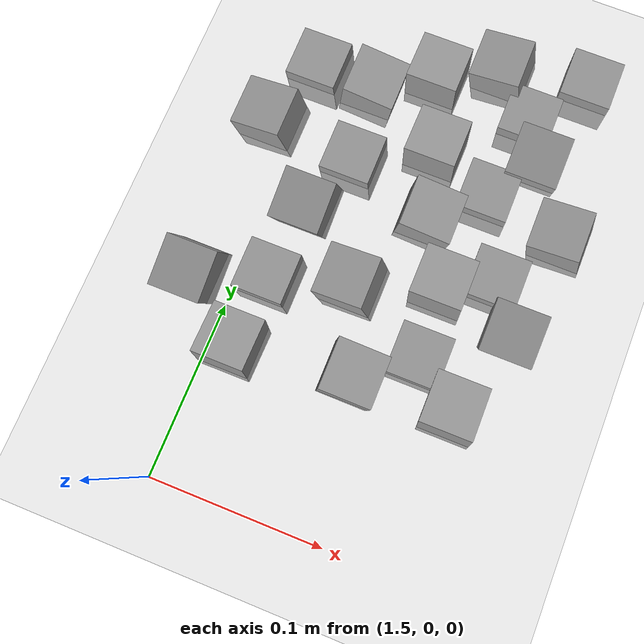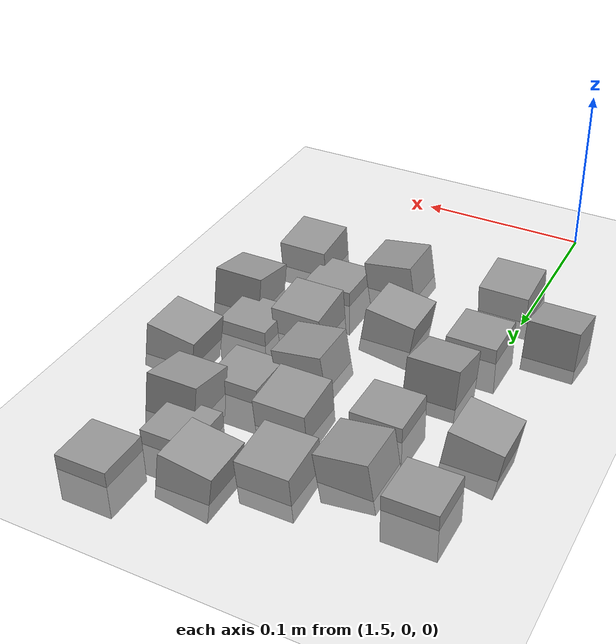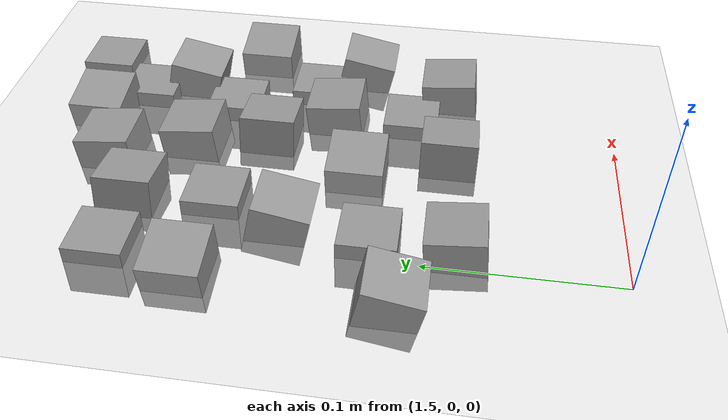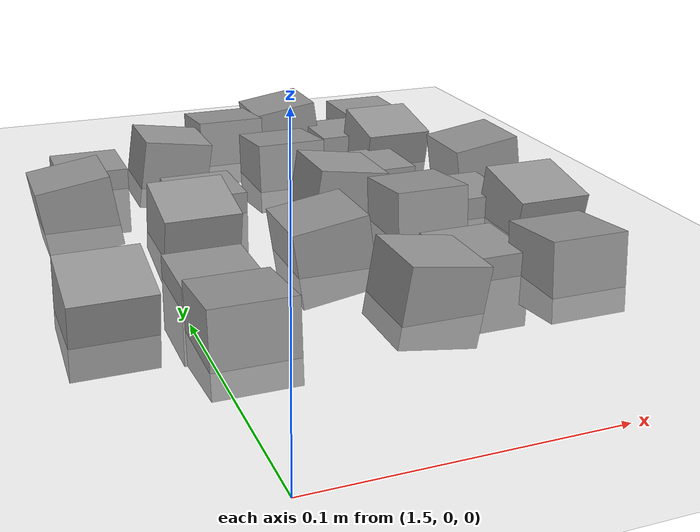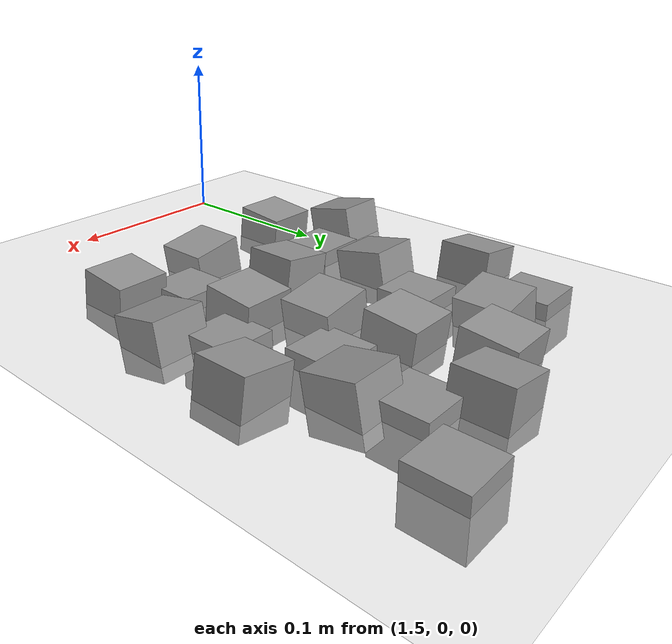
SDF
<sdf version="1.7">
 <world name="default">
  <model name="ground_plane">
   <static>1</static>
   <link name="link">
    <collision name="collision">
     <geometry><plane><normal>0 0 1</normal><size>100 100</size></plane></geometry>
     <surface><friction><ode><mu>100</mu><mu2>50</mu2></ode></friction></surface>
    </collision>
    <visual name="visual">
     <cast_shadows>0</cast_shadows>
     <geometry><plane><normal>0 0 1</normal><size>100 100</size></plane></geometry>
     <material>
      <script><uri>file://media/materials/scripts/gazebo.material</uri><name>Gazebo/Grey</name></script>
     </material>
    </visual>
   </link>
  </model>
  <model name="stone_road">
   <link name="link_0">
    <inertial>
     <mass>1</mass>
     <inertia>
      <ixx>0.166667</ixx>
      <ixy>0</ixy>
      <ixz>0</ixz>
      <iyy>0.166667</iyy>
      <iyz>0</iyz>
      <izz>0.166667</izz>
     </inertia>
    </inertial>
    <pose>-0.171827 0.03973 0.003778 0.2 -0 0</pose>
    <kinematic>1</kinematic>
    <visual name="visual">
     <geometry><box><size>0.03 0.03 0.03</size></box></geometry>
     <material>
      <lighting>1</lighting>
      <script><uri>file://media/materials/scripts/gazebo.material</uri><name>Gazebo/Grey</name></script>
      <shader type="pixel"><normal_map>__default__</normal_map></shader>
      <ambient>0.3 0.3 0.3 1</ambient>
      <diffuse>0.7 0.7 0.7 1</diffuse>
      <specular>0.01 0.01 0.01 1</specular>
      <emissive>0 0 0 1</emissive>
     </material>
    </visual>
    <collision name="collision">
     <geometry><box><size>0.03 0.03 0.03</size></box></geometry>
     <surface>
      <friction>
       <ode><mu>1</mu><mu2>1</mu2><fdir1>0 0 0</fdir1><slip1>0</slip1><slip2>0</slip2></ode>
       <torsional>
        <coefficient>1</coefficient>
        <patch_radius>0</patch_radius>
        <surface_radius>0</surface_radius>
        <use_patch_radius>1</use_patch_radius>
        <ode><slip>0</slip></ode>
       </torsional>
      </friction>
      <bounce><restitution_coefficient>0</restitution_coefficient><threshold>1e+06</threshold></bounce>
      <contact>
       <collide_without_contact>0</collide_without_contact>
       <collide_without_contact_bitmask>1</collide_without_contact_bitmask>
       <collide_bitmask>1</collide_bitmask>
       <ode>
        <soft_cfm>0</soft_cfm>
        <soft_erp>0.2</soft_erp>
        <kp>1e+13</kp>
        <kd>1</kd>
        <max_vel>0.01</max_vel>
        <min_depth>0</min_depth>
       </ode>
       <bullet>
        <split_impulse>1</split_impulse>
        <split_impulse_penetration_threshold>-0.01</split_impulse_penetration_threshold>
        <soft_cfm>0</soft_cfm>
        <soft_erp>0.2</soft_erp>
        <kp>1e+13</kp>
        <kd>1</kd>
       </bullet>
      </contact>
     </surface>
    </collision>
   </link>
   <link name="link_0_clone_10">
    <inertial>
     <mass>1</mass>
     <inertia>
      <ixx>0.166667</ixx>
      <ixy>0</ixy>
      <ixz>0</ixz>
      <iyy>0.166667</iyy>
      <iyz>0</iyz>
      <izz>0.166667</izz>
     </inertia>
    </inertial>
    <pose>-0.01295 0.17123 0.003778 0.2 -0 0</pose>
    <kinematic>1</kinematic>
    <visual name="visual">
     <geometry><box><size>0.03 0.03 0.03</size></box></geometry>
     <material>
      <lighting>1</lighting>
      <script><uri>file://media/materials/scripts/gazebo.material</uri><name>Gazebo/Grey</name></script>
      <shader type="pixel"><normal_map>__default__</normal_map></shader>
      <ambient>0.3 0.3 0.3 1</ambient>
      <diffuse>0.7 0.7 0.7 1</diffuse>
      <specular>0.01 0.01 0.01 1</specular>
      <emissive>0 0 0 1</emissive>
     </material>
    </visual>
    <collision name="collision">
     <geometry><box><size>0.03 0.03 0.03</size></box></geometry>
     <surface>
      <friction>
       <ode><mu>1</mu><mu2>1</mu2><fdir1>0 0 0</fdir1><slip1>0</slip1><slip2>0</slip2></ode>
       <torsional>
        <coefficient>1</coefficient>
        <patch_radius>0</patch_radius>
        <surface_radius>0</surface_radius>
        <use_patch_radius>1</use_patch_radius>
        <ode><slip>0</slip></ode>
       </torsional>
      </friction>
      <bounce><restitution_coefficient>0</restitution_coefficient><threshold>1e+06</threshold></bounce>
      <contact>
       <collide_without_contact>0</collide_without_contact>
       <collide_without_contact_bitmask>1</collide_without_contact_bitmask>
       <collide_bitmask>1</collide_bitmask>
       <ode>
        <soft_cfm>0</soft_cfm>
        <soft_erp>0.2</soft_erp>
        <kp>1e+13</kp>
        <kd>1</kd>
        <max_vel>0.01</max_vel>
        <min_depth>0</min_depth>
       </ode>
       <bullet>
        <split_impulse>1</split_impulse>
        <split_impulse_penetration_threshold>-0.01</split_impulse_penetration_threshold>
        <soft_cfm>0</soft_cfm>
        <soft_erp>0.2</soft_erp>
        <kp>1e+13</kp>
        <kd>1</kd>
       </bullet>
      </contact>
     </surface>
    </collision>
   </link>
   <link name="link_0_clone_11">
    <inertial>
     <mass>1</mass>
     <inertia>
      <ixx>0.166667</ixx>
      <ixy>0</ixy>
      <ixz>0</ixz>
      <iyy>0.166667</iyy>
      <iyz>0</iyz>
      <izz>0.166667</izz>
     </inertia>
    </inertial>
    <pose>0.007758 0.071496 0.003778 0.2 -0 0</pose>
    <kinematic>1</kinematic>
    <visual name="visual">
     <geometry><box><size>0.03 0.03 0.03</size></box></geometry>
     <material>
      <lighting>1</lighting>
      <script><uri>file://media/materials/scripts/gazebo.material</uri><name>Gazebo/Grey</name></script>
      <shader type="pixel"><normal_map>__default__</normal_map></shader>
      <ambient>0.3 0.3 0.3 1</ambient>
      <diffuse>0.7 0.7 0.7 1</diffuse>
      <specular>0.01 0.01 0.01 1</specular>
      <emissive>0 0 0 1</emissive>
     </material>
    </visual>
    <collision name="collision">
     <geometry><box><size>0.03 0.03 0.03</size></box></geometry>
     <surface>
      <friction>
       <ode><mu>1</mu><mu2>1</mu2><fdir1>0 0 0</fdir1><slip1>0</slip1><slip2>0</slip2></ode>
       <torsional>
        <coefficient>1</coefficient>
        <patch_radius>0</patch_radius>
        <surface_radius>0</surface_radius>
        <use_patch_radius>1</use_patch_radius>
        <ode><slip>0</slip></ode>
       </torsional>
      </friction>
      <bounce><restitution_coefficient>0</restitution_coefficient><threshold>1e+06</threshold></bounce>
      <contact>
       <collide_without_contact>0</collide_without_contact>
       <collide_without_contact_bitmask>1</collide_without_contact_bitmask>
       <collide_bitmask>1</collide_bitmask>
       <ode>
        <soft_cfm>0</soft_cfm>
        <soft_erp>0.2</soft_erp>
        <kp>1e+13</kp>
        <kd>1</kd>
        <max_vel>0.01</max_vel>
        <min_depth>0</min_depth>
       </ode>
       <bullet>
        <split_impulse>1</split_impulse>
        <split_impulse_penetration_threshold>-0.01</split_impulse_penetration_threshold>
        <soft_cfm>0</soft_cfm>
        <soft_erp>0.2</soft_erp>
        <kp>1e+13</kp>
        <kd>1</kd>
       </bullet>
      </contact>
     </surface>
    </collision>
   </link>
   <link name="link_0_clone_2">
    <inertial>
     <mass>1</mass>
     <inertia>
      <ixx>0.166667</ixx>
      <ixy>0</ixy>
      <ixz>0</ixz>
      <iyy>0.166667</iyy>
      <iyz>0</iyz>
      <izz>0.166667</izz>
     </inertia>
    </inertial>
    <pose>-0.065685 0.018139 0.003778 0 0.15 0</pose>
    <kinematic>1</kinematic>
    <visual name="visual">
     <geometry><box><size>0.03 0.03 0.03</size></box></geometry>
     <material>
      <lighting>1</lighting>
      <script><uri>file://media/materials/scripts/gazebo.material</uri><name>Gazebo/Grey</name></script>
      <shader type="pixel"><normal_map>__default__</normal_map></shader>
      <ambient>0.3 0.3 0.3 1</ambient>
      <diffuse>0.7 0.7 0.7 1</diffuse>
      <specular>0.01 0.01 0.01 1</specular>
      <emissive>0 0 0 1</emissive>
     </material>
    </visual>
    <collision name="collision">
     <geometry><box><size>0.03 0.03 0.03</size></box></geometry>
     <surface>
      <friction>
       <ode><mu>1</mu><mu2>1</mu2><fdir1>0 0 0</fdir1><slip1>0</slip1><slip2>0</slip2></ode>
       <torsional>
        <coefficient>1</coefficient>
        <patch_radius>0</patch_radius>
        <surface_radius>0</surface_radius>
        <use_patch_radius>1</use_patch_radius>
        <ode><slip>0</slip></ode>
       </torsional>
      </friction>
      <bounce><restitution_coefficient>0</restitution_coefficient><threshold>1e+06</threshold></bounce>
      <contact>
       <collide_without_contact>0</collide_without_contact>
       <collide_without_contact_bitmask>1</collide_without_contact_bitmask>
       <collide_bitmask>1</collide_bitmask>
       <ode>
        <soft_cfm>0</soft_cfm>
        <soft_erp>0.2</soft_erp>
        <kp>1e+13</kp>
        <kd>1</kd>
        <max_vel>0.01</max_vel>
        <min_depth>0</min_depth>
       </ode>
       <bullet>
        <split_impulse>1</split_impulse>
        <split_impulse_penetration_threshold>-0.01</split_impulse_penetration_threshold>
        <soft_cfm>0</soft_cfm>
        <soft_erp>0.2</soft_erp>
        <kp>1e+13</kp>
        <kd>1</kd>
       </bullet>
      </contact>
     </surface>
    </collision>
   </link>
   <link name="link_0_clone_2_clone_2_clone_1">
    <inertial>
     <mass>1</mass>
     <inertia>
      <ixx>0.166667</ixx>
      <ixy>0</ixy>
      <ixz>0</ixz>
      <iyy>0.166667</iyy>
      <iyz>0</iyz>
      <izz>0.166667</izz>
     </inertia>
    </inertial>
    <pose>-0.085624 0.065625 0.003778 0 -0.15 0</pose>
    <kinematic>1</kinematic>
    <visual name="visual">
     <geometry><box><size>0.03 0.03 0.03</size></box></geometry>
     <material>
      <lighting>1</lighting>
      <script><uri>file://media/materials/scripts/gazebo.material</uri><name>Gazebo/Grey</name></script>
      <shader type="pixel"><normal_map>__default__</normal_map></shader>
      <ambient>0.3 0.3 0.3 1</ambient>
      <diffuse>0.7 0.7 0.7 1</diffuse>
      <specular>0.01 0.01 0.01 1</specular>
      <emissive>0 0 0 1</emissive>
     </material>
    </visual>
    <collision name="collision">
     <geometry><box><size>0.03 0.03 0.03</size></box></geometry>
     <surface>
      <friction>
       <ode><mu>1</mu><mu2>1</mu2><fdir1>0 0 0</fdir1><slip1>0</slip1><slip2>0</slip2></ode>
       <torsional>
        <coefficient>1</coefficient>
        <patch_radius>0</patch_radius>
        <surface_radius>0</surface_radius>
        <use_patch_radius>1</use_patch_radius>
        <ode><slip>0</slip></ode>
       </torsional>
      </friction>
      <bounce><restitution_coefficient>0</restitution_coefficient><threshold>1e+06</threshold></bounce>
      <contact>
       <collide_without_contact>0</collide_without_contact>
       <collide_without_contact_bitmask>1</collide_without_contact_bitmask>
       <collide_bitmask>1</collide_bitmask>
       <ode>
        <soft_cfm>0</soft_cfm>
        <soft_erp>0.2</soft_erp>
        <kp>1e+13</kp>
        <kd>1</kd>
        <max_vel>0.01</max_vel>
        <min_depth>0</min_depth>
       </ode>
       <bullet>
        <split_impulse>1</split_impulse>
        <split_impulse_penetration_threshold>-0.01</split_impulse_penetration_threshold>
        <soft_cfm>0</soft_cfm>
        <soft_erp>0.2</soft_erp>
        <kp>1e+13</kp>
        <kd>1</kd>
       </bullet>
      </contact>
     </surface>
    </collision>
   </link>
   <link name="link_0_clone_2_clone_2_clone_11">
    <inertial>
     <mass>1</mass>
     <inertia>
      <ixx>0.166667</ixx>
      <ixy>0</ixy>
      <ixz>0</ixz>
      <iyy>0.166667</iyy>
      <iyz>0</iyz>
      <izz>0.166667</izz>
     </inertia>
    </inertial>
    <pose>-0.050382 0.216558 0.003778 0 -0.15 0</pose>
    <kinematic>1</kinematic>
    <visual name="visual">
     <geometry><box><size>0.03 0.03 0.03</size></box></geometry>
     <material>
      <lighting>1</lighting>
      <script><uri>file://media/materials/scripts/gazebo.material</uri><name>Gazebo/Grey</name></script>
      <shader type="pixel"><normal_map>__default__</normal_map></shader>
      <ambient>0.3 0.3 0.3 1</ambient>
      <diffuse>0.7 0.7 0.7 1</diffuse>
      <specular>0.01 0.01 0.01 1</specular>
      <emissive>0 0 0 1</emissive>
     </material>
    </visual>
    <collision name="collision">
     <geometry><box><size>0.03 0.03 0.03</size></box></geometry>
     <surface>
      <friction>
       <ode><mu>1</mu><mu2>1</mu2><fdir1>0 0 0</fdir1><slip1>0</slip1><slip2>0</slip2></ode>
       <torsional>
        <coefficient>1</coefficient>
        <patch_radius>0</patch_radius>
        <surface_radius>0</surface_radius>
        <use_patch_radius>1</use_patch_radius>
        <ode><slip>0</slip></ode>
       </torsional>
      </friction>
      <bounce><restitution_coefficient>0</restitution_coefficient><threshold>1e+06</threshold></bounce>
      <contact>
       <collide_without_contact>0</collide_without_contact>
       <collide_without_contact_bitmask>1</collide_without_contact_bitmask>
       <collide_bitmask>1</collide_bitmask>
       <ode>
        <soft_cfm>0</soft_cfm>
        <soft_erp>0.2</soft_erp>
        <kp>1e+13</kp>
        <kd>1</kd>
        <max_vel>0.01</max_vel>
        <min_depth>0</min_depth>
       </ode>
       <bullet>
        <split_impulse>1</split_impulse>
        <split_impulse_penetration_threshold>-0.01</split_impulse_penetration_threshold>
        <soft_cfm>0</soft_cfm>
        <soft_erp>0.2</soft_erp>
        <kp>1e+13</kp>
        <kd>1</kd>
       </bullet>
      </contact>
     </surface>
    </collision>
   </link>
   <link name="link_0_clone_2_clone_2_clone_13">
    <inertial>
     <mass>1</mass>
     <inertia>
      <ixx>0.166667</ixx>
      <ixy>0</ixy>
      <ixz>0</ixz>
      <iyy>0.166667</iyy>
      <iyz>0</iyz>
      <izz>0.166667</izz>
     </inertia>
    </inertial>
    <pose>0.014407 0.13189 0.003778 0 -0.15 0</pose>
    <kinematic>1</kinematic>
    <visual name="visual">
     <geometry><box><size>0.03 0.03 0.03</size></box></geometry>
     <material>
      <lighting>1</lighting>
      <script><uri>file://media/materials/scripts/gazebo.material</uri><name>Gazebo/Grey</name></script>
      <shader type="pixel"><normal_map>__default__</normal_map></shader>
      <ambient>0.3 0.3 0.3 1</ambient>
      <diffuse>0.7 0.7 0.7 1</diffuse>
      <specular>0.01 0.01 0.01 1</specular>
      <emissive>0 0 0 1</emissive>
     </material>
    </visual>
    <collision name="collision">
     <geometry><box><size>0.03 0.03 0.03</size></box></geometry>
     <surface>
      <friction>
       <ode><mu>1</mu><mu2>1</mu2><fdir1>0 0 0</fdir1><slip1>0</slip1><slip2>0</slip2></ode>
       <torsional>
        <coefficient>1</coefficient>
        <patch_radius>0</patch_radius>
        <surface_radius>0</surface_radius>
        <use_patch_radius>1</use_patch_radius>
        <ode><slip>0</slip></ode>
       </torsional>
      </friction>
      <bounce><restitution_coefficient>0</restitution_coefficient><threshold>1e+06</threshold></bounce>
      <contact>
       <collide_without_contact>0</collide_without_contact>
       <collide_without_contact_bitmask>1</collide_without_contact_bitmask>
       <collide_bitmask>1</collide_bitmask>
       <ode>
        <soft_cfm>0</soft_cfm>
        <soft_erp>0.2</soft_erp>
        <kp>1e+13</kp>
        <kd>1</kd>
        <max_vel>0.01</max_vel>
        <min_depth>0</min_depth>
       </ode>
       <bullet>
        <split_impulse>1</split_impulse>
        <split_impulse_penetration_threshold>-0.01</split_impulse_penetration_threshold>
        <soft_cfm>0</soft_cfm>
        <soft_erp>0.2</soft_erp>
        <kp>1e+13</kp>
        <kd>1</kd>
       </bullet>
      </contact>
     </surface>
    </collision>
   </link>
   <link name="link_0_clone_2_clone_2_clone_13_clone_clone_13">
    <inertial>
     <mass>1</mass>
     <inertia>
      <ixx>0.166667</ixx>
      <ixy>0</ixy>
      <ixz>0</ixz>
      <iyy>0.166667</iyy>
      <iyz>0</iyz>
      <izz>0.166667</izz>
     </inertia>
    </inertial>
    <pose>-0.069861 0.157394 0.003778 -0.1 0 0</pose>
    <kinematic>1</kinematic>
    <visual name="visual">
     <geometry><box><size>0.03 0.03 0.03</size></box></geometry>
     <material>
      <lighting>1</lighting>
      <script><uri>file://media/materials/scripts/gazebo.material</uri><name>Gazebo/Grey</name></script>
      <shader type="pixel"><normal_map>__default__</normal_map></shader>
      <ambient>0.3 0.3 0.3 1</ambient>
      <diffuse>0.7 0.7 0.7 1</diffuse>
      <specular>0.01 0.01 0.01 1</specular>
      <emissive>0 0 0 1</emissive>
     </material>
    </visual>
    <collision name="collision">
     <geometry><box><size>0.03 0.03 0.03</size></box></geometry>
     <surface>
      <friction>
       <ode><mu>1</mu><mu2>1</mu2><fdir1>0 0 0</fdir1><slip1>0</slip1><slip2>0</slip2></ode>
       <torsional>
        <coefficient>1</coefficient>
        <patch_radius>0</patch_radius>
        <surface_radius>0</surface_radius>
        <use_patch_radius>1</use_patch_radius>
        <ode><slip>0</slip></ode>
       </torsional>
      </friction>
      <bounce><restitution_coefficient>0</restitution_coefficient><threshold>1e+06</threshold></bounce>
      <contact>
       <collide_without_contact>0</collide_without_contact>
       <collide_without_contact_bitmask>1</collide_without_contact_bitmask>
       <collide_bitmask>1</collide_bitmask>
       <ode>
        <soft_cfm>0</soft_cfm>
        <soft_erp>0.2</soft_erp>
        <kp>1e+13</kp>
        <kd>1</kd>
        <max_vel>0.01</max_vel>
        <min_depth>0</min_depth>
       </ode>
       <bullet>
        <split_impulse>1</split_impulse>
        <split_impulse_penetration_threshold>-0.01</split_impulse_penetration_threshold>
        <soft_cfm>0</soft_cfm>
        <soft_erp>0.2</soft_erp>
        <kp>1e+13</kp>
        <kd>1</kd>
       </bullet>
      </contact>
     </surface>
    </collision>
   </link>
   <link name="link_0_clone_2_clone_2_clone_13_clone_clone_15">
    <inertial>
     <mass>1</mass>
     <inertia>
      <ixx>0.166667</ixx>
      <ixy>0</ixy>
      <ixz>0</ixz>
      <iyy>0.166667</iyy>
      <iyz>0</iyz>
      <izz>0.166667</izz>
     </inertia>
    </inertial>
    <pose>-0.084893 0.19984 0.003778 -0.1 0 0</pose>
    <kinematic>1</kinematic>
    <visual name="visual">
     <geometry><box><size>0.03 0.03 0.03</size></box></geometry>
     <material>
      <lighting>1</lighting>
      <script><uri>file://media/materials/scripts/gazebo.material</uri><name>Gazebo/Grey</name></script>
      <shader type="pixel"><normal_map>__default__</normal_map></shader>
      <ambient>0.3 0.3 0.3 1</ambient>
      <diffuse>0.7 0.7 0.7 1</diffuse>
      <specular>0.01 0.01 0.01 1</specular>
      <emissive>0 0 0 1</emissive>
     </material>
    </visual>
    <collision name="collision">
     <geometry><box><size>0.03 0.03 0.03</size></box></geometry>
     <surface>
      <friction>
       <ode><mu>1</mu><mu2>1</mu2><fdir1>0 0 0</fdir1><slip1>0</slip1><slip2>0</slip2></ode>
       <torsional>
        <coefficient>1</coefficient>
        <patch_radius>0</patch_radius>
        <surface_radius>0</surface_radius>
        <use_patch_radius>1</use_patch_radius>
        <ode><slip>0</slip></ode>
       </torsional>
      </friction>
      <bounce><restitution_coefficient>0</restitution_coefficient><threshold>1e+06</threshold></bounce>
      <contact>
       <collide_without_contact>0</collide_without_contact>
       <collide_without_contact_bitmask>1</collide_without_contact_bitmask>
       <collide_bitmask>1</collide_bitmask>
       <ode>
        <soft_cfm>0</soft_cfm>
        <soft_erp>0.2</soft_erp>
        <kp>1e+13</kp>
        <kd>1</kd>
        <max_vel>0.01</max_vel>
        <min_depth>0</min_depth>
       </ode>
       <bullet>
        <split_impulse>1</split_impulse>
        <split_impulse_penetration_threshold>-0.01</split_impulse_penetration_threshold>
        <soft_cfm>0</soft_cfm>
        <soft_erp>0.2</soft_erp>
        <kp>1e+13</kp>
        <kd>1</kd>
       </bullet>
      </contact>
     </surface>
    </collision>
   </link>
   <link name="link_0_clone_2_clone_2_clone_13_clone_clone_16_clone_0">
    <inertial>
     <mass>1</mass>
     <inertia>
      <ixx>0.166667</ixx>
      <ixy>0</ixy>
      <ixz>0</ixz>
      <iyy>0.166667</iyy>
      <iyz>0</iyz>
      <izz>0.166667</izz>
     </inertia>
    </inertial>
    <pose>-0.010782 0.09679 -0.006222 0 -0 0</pose>
    <kinematic>1</kinematic>
    <visual name="visual">
     <geometry><box><size>0.03 0.03 0.03</size></box></geometry>
     <material>
      <lighting>1</lighting>
      <script><uri>file://media/materials/scripts/gazebo.material</uri><name>Gazebo/Grey</name></script>
      <shader type="pixel"><normal_map>__default__</normal_map></shader>
      <ambient>0.3 0.3 0.3 1</ambient>
      <diffuse>0.7 0.7 0.7 1</diffuse>
      <specular>0.01 0.01 0.01 1</specular>
      <emissive>0 0 0 1</emissive>
     </material>
    </visual>
    <collision name="collision">
     <geometry><box><size>0.03 0.03 0.03</size></box></geometry>
     <surface>
      <friction>
       <ode><mu>1</mu><mu2>1</mu2><fdir1>0 0 0</fdir1><slip1>0</slip1><slip2>0</slip2></ode>
       <torsional>
        <coefficient>1</coefficient>
        <patch_radius>0</patch_radius>
        <surface_radius>0</surface_radius>
        <use_patch_radius>1</use_patch_radius>
        <ode><slip>0</slip></ode>
       </torsional>
      </friction>
      <bounce><restitution_coefficient>0</restitution_coefficient><threshold>1e+06</threshold></bounce>
      <contact>
       <collide_without_contact>0</collide_without_contact>
       <collide_without_contact_bitmask>1</collide_without_contact_bitmask>
       <collide_bitmask>1</collide_bitmask>
       <ode>
        <soft_cfm>0</soft_cfm>
        <soft_erp>0.2</soft_erp>
        <kp>1e+13</kp>
        <kd>1</kd>
        <max_vel>0.01</max_vel>
        <min_depth>0</min_depth>
       </ode>
       <bullet>
        <split_impulse>1</split_impulse>
        <split_impulse_penetration_threshold>-0.01</split_impulse_penetration_threshold>
        <soft_cfm>0</soft_cfm>
        <soft_erp>0.2</soft_erp>
        <kp>1e+13</kp>
        <kd>1</kd>
       </bullet>
      </contact>
     </surface>
    </collision>
   </link>
   <link name="link_0_clone_2_clone_2_clone_13_clone_clone_16_clone_2">
    <inertial>
     <mass>1</mass>
     <inertia>
      <ixx>0.166667</ixx>
      <ixy>0</ixy>
      <ixz>0</ixz>
      <iyy>0.166667</iyy>
      <iyz>0</iyz>
      <izz>0.166667</izz>
     </inertia>
    </inertial>
    <pose>-0.035128 0.040728 -0.006222 0 -0 0</pose>
    <kinematic>1</kinematic>
    <visual name="visual">
     <geometry><box><size>0.03 0.03 0.03</size></box></geometry>
     <material>
      <lighting>1</lighting>
      <script><uri>file://media/materials/scripts/gazebo.material</uri><name>Gazebo/Grey</name></script>
      <shader type="pixel"><normal_map>__default__</normal_map></shader>
      <ambient>0.3 0.3 0.3 1</ambient>
      <diffuse>0.7 0.7 0.7 1</diffuse>
      <specular>0.01 0.01 0.01 1</specular>
      <emissive>0 0 0 1</emissive>
     </material>
    </visual>
    <collision name="collision">
     <geometry><box><size>0.03 0.03 0.03</size></box></geometry>
     <surface>
      <friction>
       <ode><mu>1</mu><mu2>1</mu2><fdir1>0 0 0</fdir1><slip1>0</slip1><slip2>0</slip2></ode>
       <torsional>
        <coefficient>1</coefficient>
        <patch_radius>0</patch_radius>
        <surface_radius>0</surface_radius>
        <use_patch_radius>1</use_patch_radius>
        <ode><slip>0</slip></ode>
       </torsional>
      </friction>
      <bounce><restitution_coefficient>0</restitution_coefficient><threshold>1e+06</threshold></bounce>
      <contact>
       <collide_without_contact>0</collide_without_contact>
       <collide_without_contact_bitmask>1</collide_without_contact_bitmask>
       <collide_bitmask>1</collide_bitmask>
       <ode>
        <soft_cfm>0</soft_cfm>
        <soft_erp>0.2</soft_erp>
        <kp>1e+13</kp>
        <kd>1</kd>
        <max_vel>0.01</max_vel>
        <min_depth>0</min_depth>
       </ode>
       <bullet>
        <split_impulse>1</split_impulse>
        <split_impulse_penetration_threshold>-0.01</split_impulse_penetration_threshold>
        <soft_cfm>0</soft_cfm>
        <soft_erp>0.2</soft_erp>
        <kp>1e+13</kp>
        <kd>1</kd>
       </bullet>
      </contact>
     </surface>
    </collision>
   </link>
   <link name="link_0_clone_2_clone_2_clone_13_clone_clone_16_clone_21">
    <inertial>
     <mass>1</mass>
     <inertia>
      <ixx>0.166667</ixx>
      <ixy>0</ixy>
      <ixz>0</ixz>
      <iyy>0.166667</iyy>
      <iyz>0</iyz>
      <izz>0.166667</izz>
     </inertia>
    </inertial>
    <pose>-0.032398 0.142589 -0.006222 0 -0 0</pose>
    <kinematic>1</kinematic>
    <visual name="visual">
     <geometry><box><size>0.03 0.03 0.03</size></box></geometry>
     <material>
      <lighting>1</lighting>
      <script><uri>file://media/materials/scripts/gazebo.material</uri><name>Gazebo/Grey</name></script>
      <shader type="pixel"><normal_map>__default__</normal_map></shader>
      <ambient>0.3 0.3 0.3 1</ambient>
      <diffuse>0.7 0.7 0.7 1</diffuse>
      <specular>0.01 0.01 0.01 1</specular>
      <emissive>0 0 0 1</emissive>
     </material>
    </visual>
    <collision name="collision">
     <geometry><box><size>0.03 0.03 0.03</size></box></geometry>
     <surface>
      <friction>
       <ode><mu>1</mu><mu2>1</mu2><fdir1>0 0 0</fdir1><slip1>0</slip1><slip2>0</slip2></ode>
       <torsional>
        <coefficient>1</coefficient>
        <patch_radius>0</patch_radius>
        <surface_radius>0</surface_radius>
        <use_patch_radius>1</use_patch_radius>
        <ode><slip>0</slip></ode>
       </torsional>
      </friction>
      <bounce><restitution_coefficient>0</restitution_coefficient><threshold>1e+06</threshold></bounce>
      <contact>
       <collide_without_contact>0</collide_without_contact>
       <collide_without_contact_bitmask>1</collide_without_contact_bitmask>
       <collide_bitmask>1</collide_bitmask>
       <ode>
        <soft_cfm>0</soft_cfm>
        <soft_erp>0.2</soft_erp>
        <kp>1e+13</kp>
        <kd>1</kd>
        <max_vel>0.01</max_vel>
        <min_depth>0</min_depth>
       </ode>
       <bullet>
        <split_impulse>1</split_impulse>
        <split_impulse_penetration_threshold>-0.01</split_impulse_penetration_threshold>
        <soft_cfm>0</soft_cfm>
        <soft_erp>0.2</soft_erp>
        <kp>1e+13</kp>
        <kd>1</kd>
       </bullet>
      </contact>
     </surface>
    </collision>
   </link>
   <link name="link_0_clone_2_clone_2_clone_13_clone_clone_16_clone_22">
    <inertial>
     <mass>1</mass>
     <inertia>
      <ixx>0.166667</ixx>
      <ixy>0</ixy>
      <ixz>0</ixz>
      <iyy>0.166667</iyy>
      <iyz>0</iyz>
      <izz>0.166667</izz>
     </inertia>
    </inertial>
    <pose>-0.025872 0.194724 -0.006222 0 -0 0</pose>
    <kinematic>1</kinematic>
    <visual name="visual">
     <geometry><box><size>0.03 0.03 0.03</size></box></geometry>
     <material>
      <lighting>1</lighting>
      <script><uri>file://media/materials/scripts/gazebo.material</uri><name>Gazebo/Grey</name></script>
      <shader type="pixel"><normal_map>__default__</normal_map></shader>
      <ambient>0.3 0.3 0.3 1</ambient>
      <diffuse>0.7 0.7 0.7 1</diffuse>
      <specular>0.01 0.01 0.01 1</specular>
      <emissive>0 0 0 1</emissive>
     </material>
    </visual>
    <collision name="collision">
     <geometry><box><size>0.03 0.03 0.03</size></box></geometry>
     <surface>
      <friction>
       <ode><mu>1</mu><mu2>1</mu2><fdir1>0 0 0</fdir1><slip1>0</slip1><slip2>0</slip2></ode>
       <torsional>
        <coefficient>1</coefficient>
        <patch_radius>0</patch_radius>
        <surface_radius>0</surface_radius>
        <use_patch_radius>1</use_patch_radius>
        <ode><slip>0</slip></ode>
       </torsional>
      </friction>
      <bounce><restitution_coefficient>0</restitution_coefficient><threshold>1e+06</threshold></bounce>
      <contact>
       <collide_without_contact>0</collide_without_contact>
       <collide_without_contact_bitmask>1</collide_without_contact_bitmask>
       <collide_bitmask>1</collide_bitmask>
       <ode>
        <soft_cfm>0</soft_cfm>
        <soft_erp>0.2</soft_erp>
        <kp>1e+13</kp>
        <kd>1</kd>
        <max_vel>0.01</max_vel>
        <min_depth>0</min_depth>
       </ode>
       <bullet>
        <split_impulse>1</split_impulse>
        <split_impulse_penetration_threshold>-0.01</split_impulse_penetration_threshold>
        <soft_cfm>0</soft_cfm>
        <soft_erp>0.2</soft_erp>
        <kp>1e+13</kp>
        <kd>1</kd>
       </bullet>
      </contact>
     </surface>
    </collision>
   </link>
   <link name="link_0_clone_2_clone_2_clone_13_clone_clone_16_clone_23">
    <inertial>
     <mass>1</mass>
     <inertia>
      <ixx>0.166667</ixx>
      <ixy>0</ixy>
      <ixz>0</ixz>
      <iyy>0.166667</iyy>
      <iyz>0</iyz>
      <izz>0.166667</izz>
     </inertia>
    </inertial>
    <pose>0.000385 0.228664 -0.006222 0 -0 0</pose>
    <kinematic>1</kinematic>
    <visual name="visual">
     <geometry><box><size>0.03 0.03 0.03</size></box></geometry>
     <material>
      <lighting>1</lighting>
      <script><uri>file://media/materials/scripts/gazebo.material</uri><name>Gazebo/Grey</name></script>
      <shader type="pixel"><normal_map>__default__</normal_map></shader>
      <ambient>0.3 0.3 0.3 1</ambient>
      <diffuse>0.7 0.7 0.7 1</diffuse>
      <specular>0.01 0.01 0.01 1</specular>
      <emissive>0 0 0 1</emissive>
     </material>
    </visual>
    <collision name="collision">
     <geometry><box><size>0.03 0.03 0.03</size></box></geometry>
     <surface>
      <friction>
       <ode><mu>1</mu><mu2>1</mu2><fdir1>0 0 0</fdir1><slip1>0</slip1><slip2>0</slip2></ode>
       <torsional>
        <coefficient>1</coefficient>
        <patch_radius>0</patch_radius>
        <surface_radius>0</surface_radius>
        <use_patch_radius>1</use_patch_radius>
        <ode><slip>0</slip></ode>
       </torsional>
      </friction>
      <bounce><restitution_coefficient>0</restitution_coefficient><threshold>1e+06</threshold></bounce>
      <contact>
       <collide_without_contact>0</collide_without_contact>
       <collide_without_contact_bitmask>1</collide_without_contact_bitmask>
       <collide_bitmask>1</collide_bitmask>
       <ode>
        <soft_cfm>0</soft_cfm>
        <soft_erp>0.2</soft_erp>
        <kp>1e+13</kp>
        <kd>1</kd>
        <max_vel>0.01</max_vel>
        <min_depth>0</min_depth>
       </ode>
       <bullet>
        <split_impulse>1</split_impulse>
        <split_impulse_penetration_threshold>-0.01</split_impulse_penetration_threshold>
        <soft_cfm>0</soft_cfm>
        <soft_erp>0.2</soft_erp>
        <kp>1e+13</kp>
        <kd>1</kd>
       </bullet>
      </contact>
     </surface>
    </collision>
   </link>
   <link name="link_0_clone_2_clone_2_clone_13_clone_clone_16_clone_25">
    <inertial>
     <mass>1</mass>
     <inertia>
      <ixx>0.166667</ixx>
      <ixy>0</ixy>
      <ixz>0</ixz>
      <iyy>0.166667</iyy>
      <iyz>0</iyz>
      <izz>0.166667</izz>
     </inertia>
    </inertial>
    <pose>-0.15326 0.182661 -0.006222 0 -0 0</pose>
    <kinematic>1</kinematic>
    <visual name="visual">
     <geometry><box><size>0.03 0.03 0.03</size></box></geometry>
     <material>
      <lighting>1</lighting>
      <script><uri>file://media/materials/scripts/gazebo.material</uri><name>Gazebo/Grey</name></script>
      <shader type="pixel"><normal_map>__default__</normal_map></shader>
      <ambient>0.3 0.3 0.3 1</ambient>
      <diffuse>0.7 0.7 0.7 1</diffuse>
      <specular>0.01 0.01 0.01 1</specular>
      <emissive>0 0 0 1</emissive>
     </material>
    </visual>
    <collision name="collision">
     <geometry><box><size>0.03 0.03 0.03</size></box></geometry>
     <surface>
      <friction>
       <ode><mu>1</mu><mu2>1</mu2><fdir1>0 0 0</fdir1><slip1>0</slip1><slip2>0</slip2></ode>
       <torsional>
        <coefficient>1</coefficient>
        <patch_radius>0</patch_radius>
        <surface_radius>0</surface_radius>
        <use_patch_radius>1</use_patch_radius>
        <ode><slip>0</slip></ode>
       </torsional>
      </friction>
      <bounce><restitution_coefficient>0</restitution_coefficient><threshold>1e+06</threshold></bounce>
      <contact>
       <collide_without_contact>0</collide_without_contact>
       <collide_without_contact_bitmask>1</collide_without_contact_bitmask>
       <collide_bitmask>1</collide_bitmask>
       <ode>
        <soft_cfm>0</soft_cfm>
        <soft_erp>0.2</soft_erp>
        <kp>1e+13</kp>
        <kd>1</kd>
        <max_vel>0.01</max_vel>
        <min_depth>0</min_depth>
       </ode>
       <bullet>
        <split_impulse>1</split_impulse>
        <split_impulse_penetration_threshold>-0.01</split_impulse_penetration_threshold>
        <soft_cfm>0</soft_cfm>
        <soft_erp>0.2</soft_erp>
        <kp>1e+13</kp>
        <kd>1</kd>
       </bullet>
      </contact>
     </surface>
    </collision>
   </link>
   <link name="link_0_clone_2_clone_2_clone_13_clone_clone_16_clone_3">
    <inertial>
     <mass>1</mass>
     <inertia>
      <ixx>0.166667</ixx>
      <ixy>0</ixy>
      <ixz>0</ixz>
      <iyy>0.166667</iyy>
      <iyz>0</iyz>
      <izz>0.166667</izz>
     </inertia>
    </inertial>
    <pose>-0.112739 0.135576 -0.006222 0 -0 0</pose>
    <kinematic>1</kinematic>
    <visual name="visual">
     <geometry><box><size>0.03 0.03 0.03</size></box></geometry>
     <material>
      <lighting>1</lighting>
      <script><uri>file://media/materials/scripts/gazebo.material</uri><name>Gazebo/Grey</name></script>
      <shader type="pixel"><normal_map>__default__</normal_map></shader>
      <ambient>0.3 0.3 0.3 1</ambient>
      <diffuse>0.7 0.7 0.7 1</diffuse>
      <specular>0.01 0.01 0.01 1</specular>
      <emissive>0 0 0 1</emissive>
     </material>
    </visual>
    <collision name="collision">
     <geometry><box><size>0.03 0.03 0.03</size></box></geometry>
     <surface>
      <friction>
       <ode><mu>1</mu><mu2>1</mu2><fdir1>0 0 0</fdir1><slip1>0</slip1><slip2>0</slip2></ode>
       <torsional>
        <coefficient>1</coefficient>
        <patch_radius>0</patch_radius>
        <surface_radius>0</surface_radius>
        <use_patch_radius>1</use_patch_radius>
        <ode><slip>0</slip></ode>
       </torsional>
      </friction>
      <bounce><restitution_coefficient>0</restitution_coefficient><threshold>1e+06</threshold></bounce>
      <contact>
       <collide_without_contact>0</collide_without_contact>
       <collide_without_contact_bitmask>1</collide_without_contact_bitmask>
       <collide_bitmask>1</collide_bitmask>
       <ode>
        <soft_cfm>0</soft_cfm>
        <soft_erp>0.2</soft_erp>
        <kp>1e+13</kp>
        <kd>1</kd>
        <max_vel>0.01</max_vel>
        <min_depth>0</min_depth>
       </ode>
       <bullet>
        <split_impulse>1</split_impulse>
        <split_impulse_penetration_threshold>-0.01</split_impulse_penetration_threshold>
        <soft_cfm>0</soft_cfm>
        <soft_erp>0.2</soft_erp>
        <kp>1e+13</kp>
        <kd>1</kd>
       </bullet>
      </contact>
     </surface>
    </collision>
   </link>
   <link name="link_0_clone_2_clone_2_clone_13_clone_clone_16_clone_4">
    <inertial>
     <mass>1</mass>
     <inertia>
      <ixx>0.166667</ixx>
      <ixy>0</ixy>
      <ixz>0</ixz>
      <iyy>0.166667</iyy>
      <iyz>0</iyz>
      <izz>0.166667</izz>
     </inertia>
    </inertial>
    <pose>-0.131411 0.053677 -0.006222 0 -0 0</pose>
    <kinematic>1</kinematic>
    <visual name="visual">
     <geometry><box><size>0.03 0.03 0.03</size></box></geometry>
     <material>
      <lighting>1</lighting>
      <script><uri>file://media/materials/scripts/gazebo.material</uri><name>Gazebo/Grey</name></script>
      <shader type="pixel"><normal_map>__default__</normal_map></shader>
      <ambient>0.3 0.3 0.3 1</ambient>
      <diffuse>0.7 0.7 0.7 1</diffuse>
      <specular>0.01 0.01 0.01 1</specular>
      <emissive>0 0 0 1</emissive>
     </material>
    </visual>
    <collision name="collision">
     <geometry><box><size>0.03 0.03 0.03</size></box></geometry>
     <surface>
      <friction>
       <ode><mu>1</mu><mu2>1</mu2><fdir1>0 0 0</fdir1><slip1>0</slip1><slip2>0</slip2></ode>
       <torsional>
        <coefficient>1</coefficient>
        <patch_radius>0</patch_radius>
        <surface_radius>0</surface_radius>
        <use_patch_radius>1</use_patch_radius>
        <ode><slip>0</slip></ode>
       </torsional>
      </friction>
      <bounce><restitution_coefficient>0</restitution_coefficient><threshold>1e+06</threshold></bounce>
      <contact>
       <collide_without_contact>0</collide_without_contact>
       <collide_without_contact_bitmask>1</collide_without_contact_bitmask>
       <collide_bitmask>1</collide_bitmask>
       <ode>
        <soft_cfm>0</soft_cfm>
        <soft_erp>0.2</soft_erp>
        <kp>1e+13</kp>
        <kd>1</kd>
        <max_vel>0.01</max_vel>
        <min_depth>0</min_depth>
       </ode>
       <bullet>
        <split_impulse>1</split_impulse>
        <split_impulse_penetration_threshold>-0.01</split_impulse_penetration_threshold>
        <soft_cfm>0</soft_cfm>
        <soft_erp>0.2</soft_erp>
        <kp>1e+13</kp>
        <kd>1</kd>
       </bullet>
      </contact>
     </surface>
    </collision>
   </link>
   <link name="link_0_clone_2_clone_2_clone_13_clone_clone_2">
    <inertial>
     <mass>1</mass>
     <inertia>
      <ixx>0.166667</ixx>
      <ixy>0</ixy>
      <ixz>0</ixz>
      <iyy>0.166667</iyy>
      <iyz>0</iyz>
      <izz>0.166667</izz>
     </inertia>
    </inertial>
    <pose>-0.037997 0.082571 0.003778 -0.1 0 0</pose>
    <kinematic>1</kinematic>
    <visual name="visual">
     <geometry><box><size>0.03 0.03 0.03</size></box></geometry>
     <material>
      <lighting>1</lighting>
      <script><uri>file://media/materials/scripts/gazebo.material</uri><name>Gazebo/Grey</name></script>
      <shader type="pixel"><normal_map>__default__</normal_map></shader>
      <ambient>0.3 0.3 0.3 1</ambient>
      <diffuse>0.7 0.7 0.7 1</diffuse>
      <specular>0.01 0.01 0.01 1</specular>
      <emissive>0 0 0 1</emissive>
     </material>
    </visual>
    <collision name="collision">
     <geometry><box><size>0.03 0.03 0.03</size></box></geometry>
     <surface>
      <friction>
       <ode><mu>1</mu><mu2>1</mu2><fdir1>0 0 0</fdir1><slip1>0</slip1><slip2>0</slip2></ode>
       <torsional>
        <coefficient>1</coefficient>
        <patch_radius>0</patch_radius>
        <surface_radius>0</surface_radius>
        <use_patch_radius>1</use_patch_radius>
        <ode><slip>0</slip></ode>
       </torsional>
      </friction>
      <bounce><restitution_coefficient>0</restitution_coefficient><threshold>1e+06</threshold></bounce>
      <contact>
       <collide_without_contact>0</collide_without_contact>
       <collide_without_contact_bitmask>1</collide_without_contact_bitmask>
       <collide_bitmask>1</collide_bitmask>
       <ode>
        <soft_cfm>0</soft_cfm>
        <soft_erp>0.2</soft_erp>
        <kp>1e+13</kp>
        <kd>1</kd>
        <max_vel>0.01</max_vel>
        <min_depth>0</min_depth>
       </ode>
       <bullet>
        <split_impulse>1</split_impulse>
        <split_impulse_penetration_threshold>-0.01</split_impulse_penetration_threshold>
        <soft_cfm>0</soft_cfm>
        <soft_erp>0.2</soft_erp>
        <kp>1e+13</kp>
        <kd>1</kd>
       </bullet>
      </contact>
     </surface>
    </collision>
   </link>
   <link name="link_0_clone_2_clone_2_clone_13_clone_clone_3">
    <inertial>
     <mass>1</mass>
     <inertia>
      <ixx>0.166667</ixx>
      <ixy>0</ixy>
      <ixz>0</ixz>
      <iyy>0.166667</iyy>
      <iyz>0</iyz>
      <izz>0.166667</izz>
     </inertia>
    </inertial>
    <pose>-0.008408 0.020239 0.003778 -0.1 0 0</pose>
    <kinematic>1</kinematic>
    <visual name="visual">
     <geometry><box><size>0.03 0.03 0.03</size></box></geometry>
     <material>
      <lighting>1</lighting>
      <script><uri>file://media/materials/scripts/gazebo.material</uri><name>Gazebo/Grey</name></script>
      <shader type="pixel"><normal_map>__default__</normal_map></shader>
      <ambient>0.3 0.3 0.3 1</ambient>
      <diffuse>0.7 0.7 0.7 1</diffuse>
      <specular>0.01 0.01 0.01 1</specular>
      <emissive>0 0 0 1</emissive>
     </material>
    </visual>
    <collision name="collision">
     <geometry><box><size>0.03 0.03 0.03</size></box></geometry>
     <surface>
      <friction>
       <ode><mu>1</mu><mu2>1</mu2><fdir1>0 0 0</fdir1><slip1>0</slip1><slip2>0</slip2></ode>
       <torsional>
        <coefficient>1</coefficient>
        <patch_radius>0</patch_radius>
        <surface_radius>0</surface_radius>
        <use_patch_radius>1</use_patch_radius>
        <ode><slip>0</slip></ode>
       </torsional>
      </friction>
      <bounce><restitution_coefficient>0</restitution_coefficient><threshold>1e+06</threshold></bounce>
      <contact>
       <collide_without_contact>0</collide_without_contact>
       <collide_without_contact_bitmask>1</collide_without_contact_bitmask>
       <collide_bitmask>1</collide_bitmask>
       <ode>
        <soft_cfm>0</soft_cfm>
        <soft_erp>0.2</soft_erp>
        <kp>1e+13</kp>
        <kd>1</kd>
        <max_vel>0.01</max_vel>
        <min_depth>0</min_depth>
       </ode>
       <bullet>
        <split_impulse>1</split_impulse>
        <split_impulse_penetration_threshold>-0.01</split_impulse_penetration_threshold>
        <soft_cfm>0</soft_cfm>
        <soft_erp>0.2</soft_erp>
        <kp>1e+13</kp>
        <kd>1</kd>
       </bullet>
      </contact>
     </surface>
    </collision>
   </link>
   <link name="link_0_clone_2_clone_2_clone_13_clone_clone_7">
    <inertial>
     <mass>1</mass>
     <inertia>
      <ixx>0.166667</ixx>
      <ixy>0</ixy>
      <ixz>0</ixz>
      <iyy>0.166667</iyy>
      <iyz>0</iyz>
      <izz>0.166667</izz>
     </inertia>
    </inertial>
    <pose>-0.133876 0.010561 0.003778 -0.1 0 0</pose>
    <kinematic>1</kinematic>
    <visual name="visual">
     <geometry><box><size>0.03 0.03 0.03</size></box></geometry>
     <material>
      <lighting>1</lighting>
      <script><uri>file://media/materials/scripts/gazebo.material</uri><name>Gazebo/Grey</name></script>
      <shader type="pixel"><normal_map>__default__</normal_map></shader>
      <ambient>0.3 0.3 0.3 1</ambient>
      <diffuse>0.7 0.7 0.7 1</diffuse>
      <specular>0.01 0.01 0.01 1</specular>
      <emissive>0 0 0 1</emissive>
     </material>
    </visual>
    <collision name="collision">
     <geometry><box><size>0.03 0.03 0.03</size></box></geometry>
     <surface>
      <friction>
       <ode><mu>1</mu><mu2>1</mu2><fdir1>0 0 0</fdir1><slip1>0</slip1><slip2>0</slip2></ode>
       <torsional>
        <coefficient>1</coefficient>
        <patch_radius>0</patch_radius>
        <surface_radius>0</surface_radius>
        <use_patch_radius>1</use_patch_radius>
        <ode><slip>0</slip></ode>
       </torsional>
      </friction>
      <bounce><restitution_coefficient>0</restitution_coefficient><threshold>1e+06</threshold></bounce>
      <contact>
       <collide_without_contact>0</collide_without_contact>
       <collide_without_contact_bitmask>1</collide_without_contact_bitmask>
       <collide_bitmask>1</collide_bitmask>
       <ode>
        <soft_cfm>0</soft_cfm>
        <soft_erp>0.2</soft_erp>
        <kp>1e+13</kp>
        <kd>1</kd>
        <max_vel>0.01</max_vel>
        <min_depth>0</min_depth>
       </ode>
       <bullet>
        <split_impulse>1</split_impulse>
        <split_impulse_penetration_threshold>-0.01</split_impulse_penetration_threshold>
        <soft_cfm>0</soft_cfm>
        <soft_erp>0.2</soft_erp>
        <kp>1e+13</kp>
        <kd>1</kd>
       </bullet>
      </contact>
     </surface>
    </collision>
   </link>
   <link name="link_0_clone_2_clone_2_clone_2">
    <inertial>
     <mass>1</mass>
     <inertia>
      <ixx>0.166667</ixx>
      <ixy>0</ixy>
      <ixz>0</ixz>
      <iyy>0.166667</iyy>
      <iyz>0</iyz>
      <izz>0.166667</izz>
     </inertia>
    </inertial>
    <pose>-0.166079 0.139989 0.003778 0 -0.15 0</pose>
    <kinematic>1</kinematic>
    <visual name="visual">
     <geometry><box><size>0.03 0.03 0.03</size></box></geometry>
     <material>
      <lighting>1</lighting>
      <script><uri>file://media/materials/scripts/gazebo.material</uri><name>Gazebo/Grey</name></script>
      <shader type="pixel"><normal_map>__default__</normal_map></shader>
      <ambient>0.3 0.3 0.3 1</ambient>
      <diffuse>0.7 0.7 0.7 1</diffuse>
      <specular>0.01 0.01 0.01 1</specular>
      <emissive>0 0 0 1</emissive>
     </material>
    </visual>
    <collision name="collision">
     <geometry><box><size>0.03 0.03 0.03</size></box></geometry>
     <surface>
      <friction>
       <ode><mu>1</mu><mu2>1</mu2><fdir1>0 0 0</fdir1><slip1>0</slip1><slip2>0</slip2></ode>
       <torsional>
        <coefficient>1</coefficient>
        <patch_radius>0</patch_radius>
        <surface_radius>0</surface_radius>
        <use_patch_radius>1</use_patch_radius>
        <ode><slip>0</slip></ode>
       </torsional>
      </friction>
      <bounce><restitution_coefficient>0</restitution_coefficient><threshold>1e+06</threshold></bounce>
      <contact>
       <collide_without_contact>0</collide_without_contact>
       <collide_without_contact_bitmask>1</collide_without_contact_bitmask>
       <collide_bitmask>1</collide_bitmask>
       <ode>
        <soft_cfm>0</soft_cfm>
        <soft_erp>0.2</soft_erp>
        <kp>1e+13</kp>
        <kd>1</kd>
        <max_vel>0.01</max_vel>
        <min_depth>0</min_depth>
       </ode>
       <bullet>
        <split_impulse>1</split_impulse>
        <split_impulse_penetration_threshold>-0.01</split_impulse_penetration_threshold>
        <soft_cfm>0</soft_cfm>
        <soft_erp>0.2</soft_erp>
        <kp>1e+13</kp>
        <kd>1</kd>
       </bullet>
      </contact>
     </surface>
    </collision>
   </link>
   <link name="link_0_clone_2_clone_3">
    <inertial>
     <mass>1</mass>
     <inertia>
      <ixx>0.166667</ixx>
      <ixy>0</ixy>
      <ixz>0</ixz>
      <iyy>0.166667</iyy>
      <iyz>0</iyz>
      <izz>0.166667</izz>
     </inertia>
    </inertial>
    <pose>-0.058921 0.117271 0.003778 0 0.15 0</pose>
    <kinematic>1</kinematic>
    <visual name="visual">
     <geometry><box><size>0.03 0.03 0.03</size></box></geometry>
     <material>
      <lighting>1</lighting>
      <script><uri>file://media/materials/scripts/gazebo.material</uri><name>Gazebo/Grey</name></script>
      <shader type="pixel"><normal_map>__default__</normal_map></shader>
      <ambient>0.3 0.3 0.3 1</ambient>
      <diffuse>0.7 0.7 0.7 1</diffuse>
      <specular>0.01 0.01 0.01 1</specular>
      <emissive>0 0 0 1</emissive>
     </material>
    </visual>
    <collision name="collision">
     <geometry><box><size>0.03 0.03 0.03</size></box></geometry>
     <surface>
      <friction>
       <ode><mu>1</mu><mu2>1</mu2><fdir1>0 0 0</fdir1><slip1>0</slip1><slip2>0</slip2></ode>
       <torsional>
        <coefficient>1</coefficient>
        <patch_radius>0</patch_radius>
        <surface_radius>0</surface_radius>
        <use_patch_radius>1</use_patch_radius>
        <ode><slip>0</slip></ode>
       </torsional>
      </friction>
      <bounce><restitution_coefficient>0</restitution_coefficient><threshold>1e+06</threshold></bounce>
      <contact>
       <collide_without_contact>0</collide_without_contact>
       <collide_without_contact_bitmask>1</collide_without_contact_bitmask>
       <collide_bitmask>1</collide_bitmask>
       <ode>
        <soft_cfm>0</soft_cfm>
        <soft_erp>0.2</soft_erp>
        <kp>1e+13</kp>
        <kd>1</kd>
        <max_vel>0.01</max_vel>
        <min_depth>0</min_depth>
       </ode>
       <bullet>
        <split_impulse>1</split_impulse>
        <split_impulse_penetration_threshold>-0.01</split_impulse_penetration_threshold>
        <soft_cfm>0</soft_cfm>
        <soft_erp>0.2</soft_erp>
        <kp>1e+13</kp>
        <kd>1</kd>
       </bullet>
      </contact>
     </surface>
    </collision>
   </link>
   <link name="link_0_clone_2_clone_4">
    <inertial>
     <mass>1</mass>
     <inertia>
      <ixx>0.166667</ixx>
      <ixy>0</ixy>
      <ixz>0</ixz>
      <iyy>0.166667</iyy>
      <iyz>0</iyz>
      <izz>0.166667</izz>
     </inertia>
    </inertial>
    <pose>-0.117313 0.179399 0.003778 0 0.15 0</pose>
    <kinematic>1</kinematic>
    <visual name="visual">
     <geometry><box><size>0.03 0.03 0.03</size></box></geometry>
     <material>
      <lighting>1</lighting>
      <script><uri>file://media/materials/scripts/gazebo.material</uri><name>Gazebo/Grey</name></script>
      <shader type="pixel"><normal_map>__default__</normal_map></shader>
      <ambient>0.3 0.3 0.3 1</ambient>
      <diffuse>0.7 0.7 0.7 1</diffuse>
      <specular>0.01 0.01 0.01 1</specular>
      <emissive>0 0 0 1</emissive>
     </material>
    </visual>
    <collision name="collision">
     <geometry><box><size>0.03 0.03 0.03</size></box></geometry>
     <surface>
      <friction>
       <ode><mu>1</mu><mu2>1</mu2><fdir1>0 0 0</fdir1><slip1>0</slip1><slip2>0</slip2></ode>
       <torsional>
        <coefficient>1</coefficient>
        <patch_radius>0</patch_radius>
        <surface_radius>0</surface_radius>
        <use_patch_radius>1</use_patch_radius>
        <ode><slip>0</slip></ode>
       </torsional>
      </friction>
      <bounce><restitution_coefficient>0</restitution_coefficient><threshold>1e+06</threshold></bounce>
      <contact>
       <collide_without_contact>0</collide_without_contact>
       <collide_without_contact_bitmask>1</collide_without_contact_bitmask>
       <collide_bitmask>1</collide_bitmask>
       <ode>
        <soft_cfm>0</soft_cfm>
        <soft_erp>0.2</soft_erp>
        <kp>1e+13</kp>
        <kd>1</kd>
        <max_vel>0.01</max_vel>
        <min_depth>0</min_depth>
       </ode>
       <bullet>
        <split_impulse>1</split_impulse>
        <split_impulse_penetration_threshold>-0.01</split_impulse_penetration_threshold>
        <soft_cfm>0</soft_cfm>
        <soft_erp>0.2</soft_erp>
        <kp>1e+13</kp>
        <kd>1</kd>
       </bullet>
      </contact>
     </surface>
    </collision>
   </link>
   <link name="link_0_clone_3">
    <inertial>
     <mass>1</mass>
     <inertia>
      <ixx>0.166667</ixx>
      <ixy>0</ixy>
      <ixz>0</ixz>
      <iyy>0.166667</iyy>
      <iyz>0</iyz>
      <izz>0.166667</izz>
     </inertia>
    </inertial>
    <pose>-0.126666 0.098861 0.003778 0.2 -0 0</pose>
    <kinematic>1</kinematic>
    <visual name="visual">
     <geometry><box><size>0.03 0.03 0.03</size></box></geometry>
     <material>
      <lighting>1</lighting>
      <script><uri>file://media/materials/scripts/gazebo.material</uri><name>Gazebo/Grey</name></script>
      <shader type="pixel"><normal_map>__default__</normal_map></shader>
      <ambient>0.3 0.3 0.3 1</ambient>
      <diffuse>0.7 0.7 0.7 1</diffuse>
      <specular>0.01 0.01 0.01 1</specular>
      <emissive>0 0 0 1</emissive>
     </material>
    </visual>
    <collision name="collision">
     <geometry><box><size>0.03 0.03 0.03</size></box></geometry>
     <surface>
      <friction>
       <ode><mu>1</mu><mu2>1</mu2><fdir1>0 0 0</fdir1><slip1>0</slip1><slip2>0</slip2></ode>
       <torsional>
        <coefficient>1</coefficient>
        <patch_radius>0</patch_radius>
        <surface_radius>0</surface_radius>
        <use_patch_radius>1</use_patch_radius>
        <ode><slip>0</slip></ode>
       </torsional>
      </friction>
      <bounce><restitution_coefficient>0</restitution_coefficient><threshold>1e+06</threshold></bounce>
      <contact>
       <collide_without_contact>0</collide_without_contact>
       <collide_without_contact_bitmask>1</collide_without_contact_bitmask>
       <collide_bitmask>1</collide_bitmask>
       <ode>
        <soft_cfm>0</soft_cfm>
        <soft_erp>0.2</soft_erp>
        <kp>1e+13</kp>
        <kd>1</kd>
        <max_vel>0.01</max_vel>
        <min_depth>0</min_depth>
       </ode>
       <bullet>
        <split_impulse>1</split_impulse>
        <split_impulse_penetration_threshold>-0.01</split_impulse_penetration_threshold>
        <soft_cfm>0</soft_cfm>
        <soft_erp>0.2</soft_erp>
        <kp>1e+13</kp>
        <kd>1</kd>
       </bullet>
      </contact>
     </surface>
    </collision>
   </link>
   <static>0</static>
   <pose>1.64646 0.071889 -0 0 -0 0</pose>
  </model>
 </world>
</sdf>
